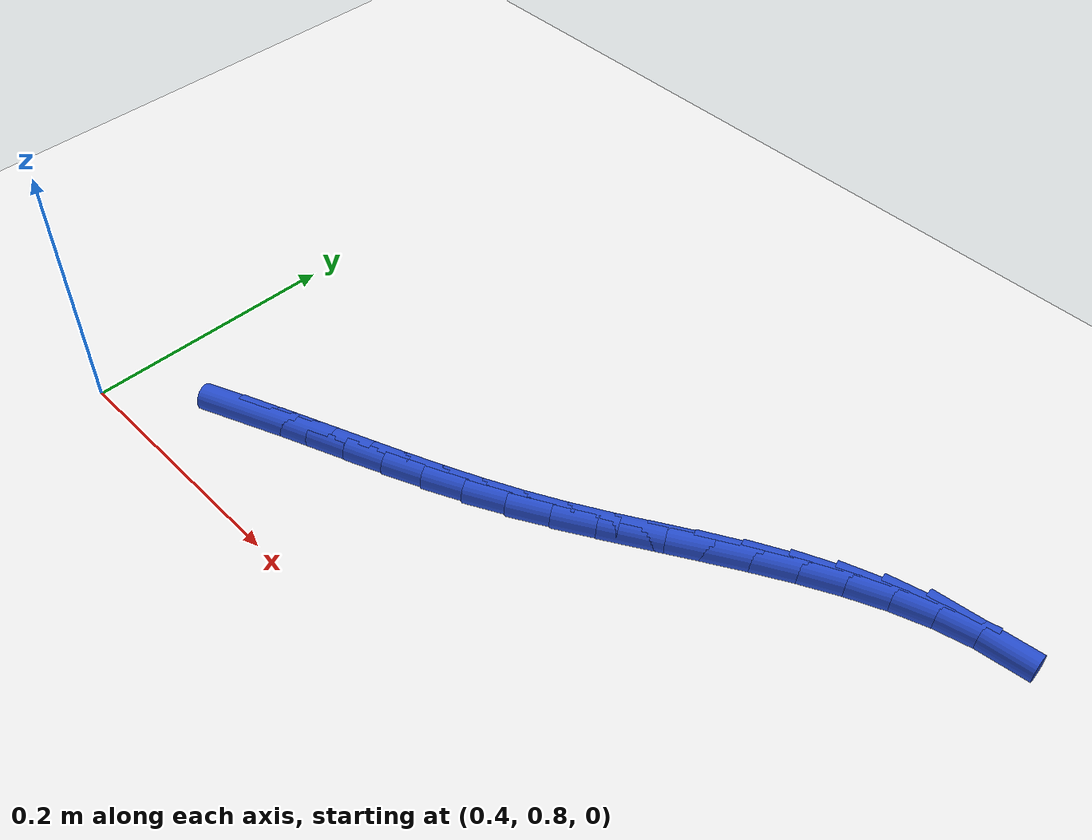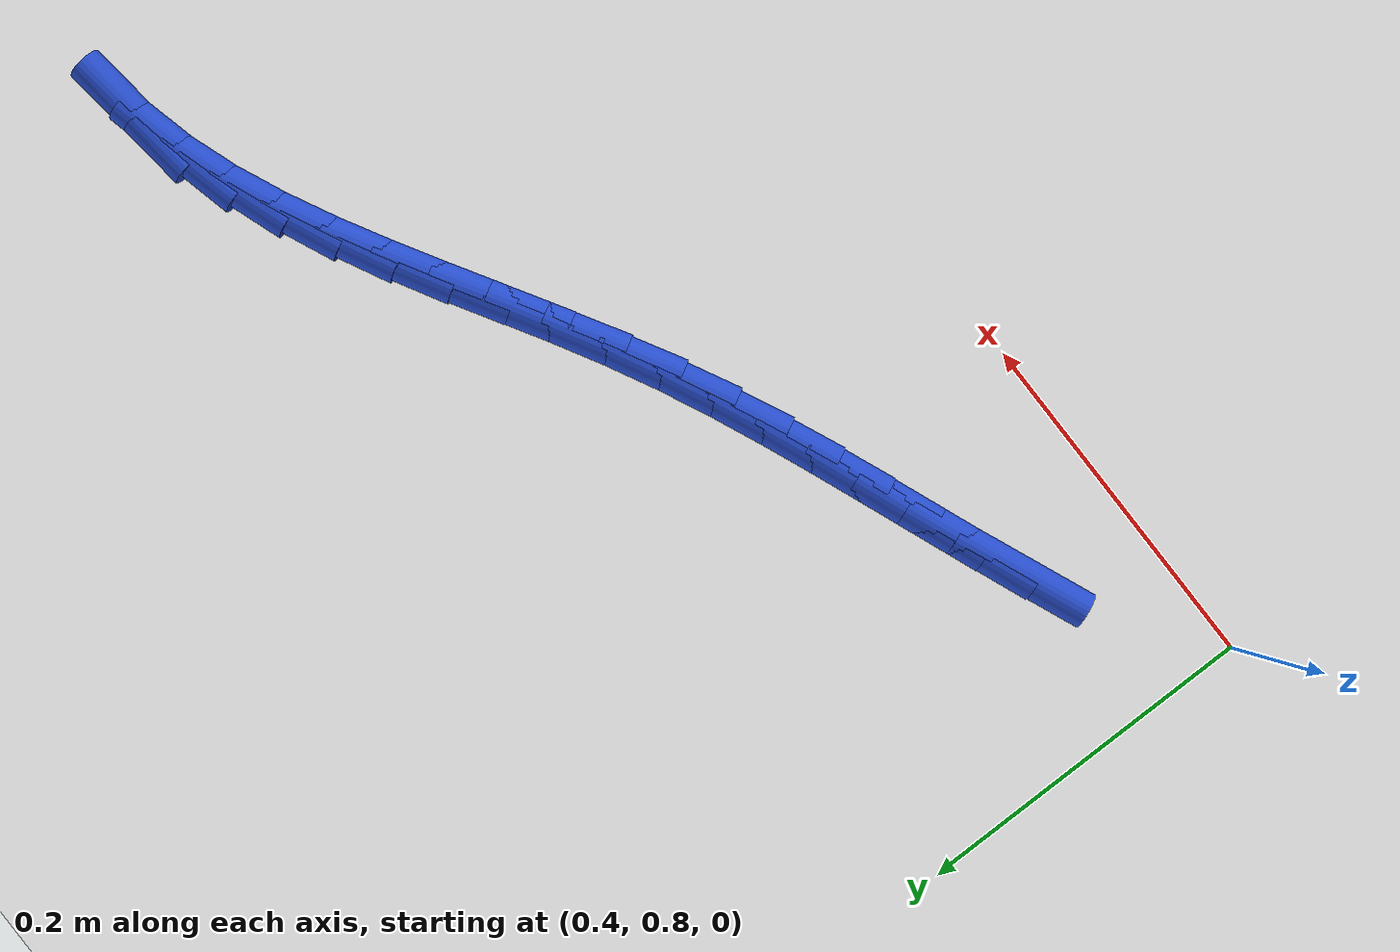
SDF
<sdf version="1.6">
 <world name="default">
  <model name="ground_plane">
   <static>1</static>
   <link name="link">
    <collision name="collision">
     <geometry><plane><normal>0 0 1</normal><size>100 100</size></plane></geometry>
     <surface><friction><ode><mu>100</mu><mu2>50</mu2></ode></friction></surface>
    </collision>
    <visual name="visual">
     <cast_shadows>0</cast_shadows>
     <geometry><plane><normal>0 0 1</normal><size>100 100</size></plane></geometry>
     <material>
      <script><uri>file://media/materials/scripts/gazebo.material</uri><name>Gazebo/WhiteGlow</name></script>
     </material>
    </visual>
   </link>
  </model>
  <model name="line">
   <link name="link_34">
    <pose>0.5016990758842036 0.8662273814150796 0.01 0 1.57 0.39449636285148354</pose>
    <collision name="collision">
     <geometry><cylinder><radius>0.01</radius><length>0.08</length></cylinder></geometry>
    </collision>
    <visual name="visual">
     <material>
      <script><name>Gazebo/Blue</name><uri>file://media/materials/scripts/gazebo.material</uri></script>
     </material>
     <geometry><cylinder><radius>0.01</radius><length>0.08</length></cylinder></geometry>
    </visual>
   </link>
   <link name="link_35">
    <pose>0.5302533107953475 0.8781151027434528 0.01 0 1.57 0.3799111860514382</pose>
    <collision name="collision">
     <geometry><cylinder><radius>0.01</radius><length>0.08</length></cylinder></geometry>
    </collision>
    <visual name="visual">
     <material>
      <script><name>Gazebo/Blue</name><uri>file://media/materials/scripts/gazebo.material</uri></script>
     </material>
     <geometry><cylinder><radius>0.01</radius><length>0.08</length></cylinder></geometry>
    </visual>
   </link>
   <link name="link_36">
    <pose>0.5589183020704553 0.889561313031773 0.01 0 1.57 0.37425460069224775</pose>
    <collision name="collision">
     <geometry><cylinder><radius>0.01</radius><length>0.08</length></cylinder></geometry>
    </collision>
    <visual name="visual">
     <material>
      <script><name>Gazebo/Blue</name><uri>file://media/materials/scripts/gazebo.material</uri></script>
     </material>
     <geometry><cylinder><radius>0.01</radius><length>0.08</length></cylinder></geometry>
    </visual>
   </link>
   <link name="link_37">
    <pose>0.5876503707485907 0.9008462908623217 0.01 0 1.57 0.3775600619279605</pose>
    <collision name="collision">
     <geometry><cylinder><radius>0.01</radius><length>0.08</length></cylinder></geometry>
    </collision>
    <visual name="visual">
     <material>
      <script><name>Gazebo/Blue</name><uri>file://media/materials/scripts/gazebo.material</uri></script>
     </material>
     <geometry><cylinder><radius>0.01</radius><length>0.08</length></cylinder></geometry>
    </visual>
   </link>
   <link name="link_38">
    <pose>0.6164058378688172 0.9122503148173811 0.01 0 1.57 0.38975017043742327</pose>
    <collision name="collision">
     <geometry><cylinder><radius>0.01</radius><length>0.08</length></cylinder></geometry>
    </collision>
    <visual name="visual">
     <material>
      <script><name>Gazebo/Blue</name><uri>file://media/materials/scripts/gazebo.material</uri></script>
     </material>
     <geometry><cylinder><radius>0.01</radius><length>0.08</length></cylinder></geometry>
    </visual>
   </link>
   <link name="link_39">
    <pose>0.6451410244701985 0.9240536634792329 0.01 0 1.57 0.41063179023373153</pose>
    <collision name="collision">
     <geometry><cylinder><radius>0.01</radius><length>0.08</length></cylinder></geometry>
    </collision>
    <visual name="visual">
     <material>
      <script><name>Gazebo/Blue</name><uri>file://media/materials/scripts/gazebo.material</uri></script>
     </material>
     <geometry><cylinder><radius>0.01</radius><length>0.08</length></cylinder></geometry>
    </visual>
   </link>
   <link name="link_40">
    <pose>0.6738122515917987 0.9365366154301592 0.01 0 1.57 0.4398754014882249</pose>
    <collision name="collision">
     <geometry><cylinder><radius>0.01</radius><length>0.08</length></cylinder></geometry>
    </collision>
    <visual name="visual">
     <material>
      <script><name>Gazebo/Blue</name><uri>file://media/materials/scripts/gazebo.material</uri></script>
     </material>
     <geometry><cylinder><radius>0.01</radius><length>0.08</length></cylinder></geometry>
    </visual>
   </link>
   <link name="link_41">
    <pose>0.7023758402726813 0.9499794492524419 0.01 0 1.57 0.47686178427481807</pose>
    <collision name="collision">
     <geometry><cylinder><radius>0.01</radius><length>0.08</length></cylinder></geometry>
    </collision>
    <visual name="visual">
     <material>
      <script><name>Gazebo/Blue</name><uri>file://media/materials/scripts/gazebo.material</uri></script>
     </material>
     <geometry><cylinder><radius>0.01</radius><length>0.08</length></cylinder></geometry>
    </visual>
   </link>
   <link name="link_42">
    <pose>0.730788560513059 0.9646582718048161 0.01 0 1.57 0.5126657409627811</pose>
    <collision name="collision">
     <geometry><cylinder><radius>0.01</radius><length>0.08</length></cylinder></geometry>
    </collision>
    <visual name="visual">
     <material>
      <script><name>Gazebo/Blue</name><uri>file://media/materials/scripts/gazebo.material</uri></script>
     </material>
     <geometry><cylinder><radius>0.01</radius><length>0.08</length></cylinder></geometry>
    </visual>
   </link>
   <link name="link_43">
    <pose>0.7590384034824416 0.9805590844717675 0.01 0 1.57 0.5340961172704325</pose>
    <collision name="collision">
     <geometry><cylinder><radius>0.01</radius><length>0.08</length></cylinder></geometry>
    </collision>
    <visual name="visual">
     <material>
      <script><name>Gazebo/Blue</name><uri>file://media/materials/scripts/gazebo.material</uri></script>
     </material>
     <geometry><cylinder><radius>0.01</radius><length>0.08</length></cylinder></geometry>
    </visual>
   </link>
   <link name="link_44">
    <pose>0.7871643914444696 0.9971937103767368 0.01 0 1.57 0.5406539949797214</pose>
    <collision name="collision">
     <geometry><cylinder><radius>0.01</radius><length>0.08</length></cylinder></geometry>
    </collision>
    <visual name="visual">
     <material>
      <script><name>Gazebo/Blue</name><uri>file://media/materials/scripts/gazebo.material</uri></script>
     </material>
     <geometry><cylinder><radius>0.01</radius><length>0.08</length></cylinder></geometry>
    </visual>
   </link>
   <link name="link_45">
    <pose>0.8152102599600243 1.0140301769314102 0.01 0 1.57 0.532523852663507</pose>
    <collision name="collision">
     <geometry><cylinder><radius>0.01</radius><length>0.08</length></cylinder></geometry>
    </collision>
    <visual name="visual">
     <material>
      <script><name>Gazebo/Blue</name><uri>file://media/materials/scripts/gazebo.material</uri></script>
     </material>
     <geometry><cylinder><radius>0.01</radius><length>0.08</length></cylinder></geometry>
    </visual>
   </link>
   <link name="link_46">
    <pose>0.8432197445899874 1.0305365115474745 0.01 0 1.57 0.5092593615520646</pose>
    <collision name="collision">
     <geometry><cylinder><radius>0.01</radius><length>0.08</length></cylinder></geometry>
    </collision>
    <visual name="visual">
     <material>
      <script><name>Gazebo/Blue</name><uri>file://media/materials/scripts/gazebo.material</uri></script>
     </material>
     <geometry><cylinder><radius>0.01</radius><length>0.08</length></cylinder></geometry>
    </visual>
   </link>
   <link name="link_47">
    <pose>0.8712365808952395 1.046180741636616 0.01 0 1.57 0.46979054889330396</pose>
    <collision name="collision">
     <geometry><cylinder><radius>0.01</radius><length>0.08</length></cylinder></geometry>
    </collision>
    <visual name="visual">
     <material>
      <script><name>Gazebo/Blue</name><uri>file://media/materials/scripts/gazebo.material</uri></script>
     </material>
     <geometry><cylinder><radius>0.01</radius><length>0.08</length></cylinder></geometry>
    </visual>
   </link>
   <link name="link_48">
    <pose>0.8993045044366627 1.0604308946105216 0.01 0 1.57 0.41249692012261846</pose>
    <collision name="collision">
     <geometry><cylinder><radius>0.01</radius><length>0.08</length></cylinder></geometry>
    </collision>
    <visual name="visual">
     <material>
      <script><name>Gazebo/Blue</name><uri>file://media/materials/scripts/gazebo.material</uri></script>
     </material>
     <geometry><cylinder><radius>0.01</radius><length>0.08</length></cylinder></geometry>
    </visual>
   </link>
   <link name="link_49">
    <pose>0.927467250775138 1.0727549978808772 0.01 0 1.57 0.3354348147227649</pose>
    <collision name="collision">
     <geometry><cylinder><radius>0.01</radius><length>0.08</length></cylinder></geometry>
    </collision>
    <visual name="visual">
     <material>
      <script><name>Gazebo/Blue</name><uri>file://media/materials/scripts/gazebo.material</uri></script>
     </material>
     <geometry><cylinder><radius>0.01</radius><length>0.08</length></cylinder></geometry>
    </visual>
   </link>
   <link name="link_50">
    <pose>0.955768555471546 1.0826210788593689 0.01 0 1.57 0.2368731347670547</pose>
    <collision name="collision">
     <geometry><cylinder><radius>0.01</radius><length>0.08</length></cylinder></geometry>
    </collision>
    <visual name="visual">
     <material>
      <script><name>Gazebo/Blue</name><uri>file://media/materials/scripts/gazebo.material</uri></script>
     </material>
     <geometry><cylinder><radius>0.01</radius><length>0.08</length></cylinder></geometry>
    </visual>
   </link>
   <link name="link_51">
    <pose>0.9842521540867695 1.0894971649576841 0.01 0 1.57 0.11640558924391527</pose>
    <collision name="collision">
     <geometry><cylinder><radius>0.01</radius><length>0.08</length></cylinder></geometry>
    </collision>
    <visual name="visual">
     <material>
      <script><name>Gazebo/Blue</name><uri>file://media/materials/scripts/gazebo.material</uri></script>
     </material>
     <geometry><cylinder><radius>0.01</radius><length>0.08</length></cylinder></geometry>
    </visual>
   </link>
  </model>
 </world>
</sdf>
